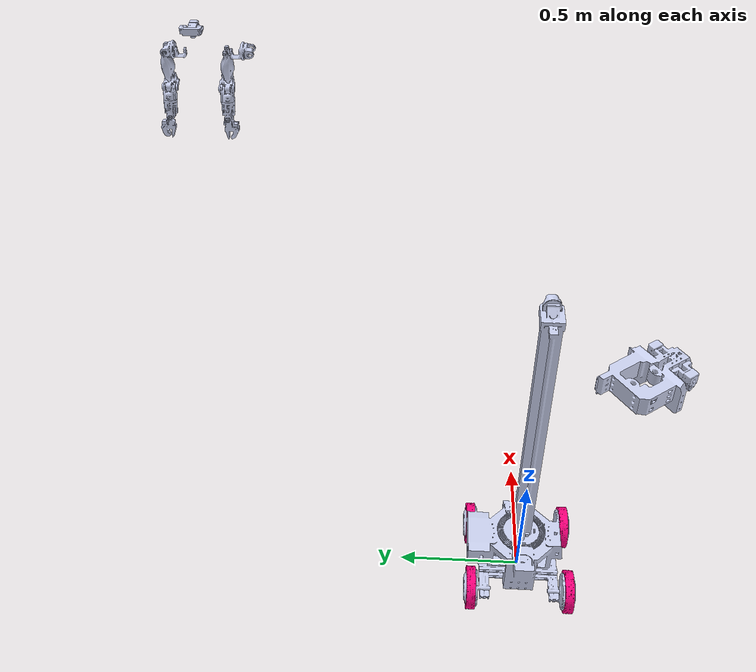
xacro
<?xml version="1.0"?>
<robot xmlns:xacro="http://www.ros.org/wiki/xacro" name="aizee_model">
    <xacro:arg name="ros2_control_hardware_type" default="feetech"/>
    <xacro:arg name="initial_positions_file" default="initial_positions.yaml" />

    <!-- Import aizee_model urdf file -->
    <xacro:include filename="$(find aizee_model)/urdf/aizee_model.urdf" />

    <!-- Import control_xacro -->
    <xacro:include filename="aizee_model.ros2_control.xacro" />

    <xacro:aizee_model_ros2_control
          name="aizee_hw"
          hardware_type="$(arg ros2_control_hardware_type)"
          initial_positions_file="$(arg initial_positions_file)"/>

</robot>

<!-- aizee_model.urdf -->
<robot
  name="aizee_model">
  <link
    name="base_link">
    <visual>
      <origin
        xyz="0 0 0"
        rpy="0 0 0" />
      <geometry>
        <mesh
          filename="package://aizee_model/meshes/base_link.STL" />
      </geometry>
      <material
        name="">
        <color
          rgba="0.792156862745098 0.819607843137255 0.933333333333333 1" />
      </material>
    </visual>
    <collision>
      <origin
        xyz="0 0 0"
        rpy="0 0 0" />
      <geometry>
        <mesh
          filename="package://aizee_model/meshes/base_link.STL" />
      </geometry>
    </collision>
  </link>
  <link
    name="fr_wheel_link">
    <inertial>
      <origin
        xyz="-5.46627908770692E-08 -0.0186624897526543 -3.37595906785282E-09"
        rpy="0 0 0" />
      <mass
        value="0.426146379184825" />
      <inertia
        ixx="0.00128519449195817"
        ixy="-1.71323451991008E-10"
        ixz="-2.79401242699905E-11"
        iyy="0.00247152544875011"
        iyz="-1.13833169168181E-10"
        izz="0.00128519581424847" />
    </inertial>
    <visual>
      <origin
        xyz="0 0 0"
        rpy="0 0 0" />
      <geometry>
        <mesh
          filename="package://aizee_model/meshes/fr_wheel_link.STL" />
      </geometry>
      <material
        name="">
        <color
          rgba="1 0 0.501960784313725 1" />
      </material>
    </visual>
    <collision>
      <origin
        xyz="0 0 0"
        rpy="0 0 0" />
      <geometry>
        <mesh
          filename="package://aizee_model/meshes/fr_wheel_link.STL" />
      </geometry>
    </collision>
  </link>
  <joint
    name="fr_wheel_joint"
    type="continuous">
    <origin
      xyz="-0.164400000012016 0.18552749994085 0.0449999999998704"
      rpy="3.14159265358979 0 0" />
    <parent
      link="base_link" />
    <child
      link="fr_wheel_link" />
    <axis
      xyz="0 1 0" />
  </joint>
  <link
    name="fl_wheel_link">
    <inertial>
      <origin
        xyz="-5.45316413275154E-08 -0.0186624897523085 -3.17734610844056E-09"
        rpy="0 0 0" />
      <mass
        value="0.426146379160631" />
      <inertia
        ixx="0.00128519449163043"
        ixy="-1.70595585741986E-10"
        ixz="-2.72508219332013E-11"
        iyy="0.00247152544860307"
        iyz="-1.13562728369243E-10"
        izz="0.00128519581445071" />
    </inertial>
    <visual>
      <origin
        xyz="0 0 0"
        rpy="0 0 0" />
      <geometry>
        <mesh
          filename="package://aizee_model/meshes/fl_wheel_link.STL" />
      </geometry>
      <material
        name="">
        <color
          rgba="1 0 0.501960784313725 1" />
      </material>
    </visual>
    <collision>
      <origin
        xyz="0 0 0"
        rpy="0 0 0" />
      <geometry>
        <mesh
          filename="package://aizee_model/meshes/fl_wheel_link.STL" />
      </geometry>
    </collision>
  </link>
  <joint
    name="fl_wheel_joint"
    type="continuous">
    <origin
      xyz="-0.164400000012017 -0.182527499940847 0.0449999999998682"
      rpy="-3.14159265358979 0.937838269683351 3.14159265358979" />
    <parent
      link="base_link" />
    <child
      link="fl_wheel_link" />
    <axis
      xyz="0 1 0" />
  </joint>
  <link
    name="br_wheel_link">
    <inertial>
      <origin
        xyz="-5.46627909048247E-08 0.0186625103656381 -3.37595910254729E-09"
        rpy="0 0 0" />
      <mass
        value="0.426146379184826" />
      <inertia
        ixx="0.00128519449195818"
        ixy="-1.71323451195235E-10"
        ixz="-2.79401242048679E-11"
        iyy="0.00247152544875012"
        iyz="-1.1383316939129E-10"
        izz="0.00128519581424847" />
    </inertial>
    <visual>
      <origin
        xyz="0 0 0"
        rpy="0 0 0" />
      <geometry>
        <mesh
          filename="package://aizee_model/meshes/br_wheel_link.STL" />
      </geometry>
      <material
        name="">
        <color
          rgba="1 0 0.501960784313725 1" />
      </material>
    </visual>
    <collision>
      <origin
        xyz="0 0 0"
        rpy="0 0 0" />
      <geometry>
        <mesh
          filename="package://aizee_model/meshes/br_wheel_link.STL" />
      </geometry>
    </collision>
  </link>
  <joint
    name="br_wheel_joint"
    type="continuous">
    <origin
      xyz="0.164799999987984 0.182527499940852 0.0449999999998817"
      rpy="0 0 0" />
    <parent
      link="base_link" />
    <child
      link="br_wheel_link" />
    <axis
      xyz="0 1 0" />
  </joint>
  <link
    name="bl_wheel_link">
    <inertial>
      <origin
        xyz="-5.46069843510022E-08 0.0186625103671857 -3.44144951772152E-09"
        rpy="0 0 0" />
      <mass
        value="0.426146379308016" />
      <inertia
        ixx="0.00128519449230551"
        ixy="-1.71311975107913E-10"
        ixz="-2.80043327394697E-11"
        iyy="0.00247152544942666"
        iyz="-1.14095859060689E-10"
        izz="0.00128519581458769" />
    </inertial>
    <visual>
      <origin
        xyz="0 0 0"
        rpy="0 0 0" />
      <geometry>
        <mesh
          filename="package://aizee_model/meshes/bl_wheel_link.STL" />
      </geometry>
      <material
        name="">
        <color
          rgba="1 0 0.501960784313725 1" />
      </material>
    </visual>
    <collision>
      <origin
        xyz="0 0 0"
        rpy="0 0 0" />
      <geometry>
        <mesh
          filename="package://aizee_model/meshes/bl_wheel_link.STL" />
      </geometry>
    </collision>
  </link>
  <joint
    name="bl_wheel_joint"
    type="continuous">
    <origin
      xyz="0.164799999987983 -0.182527499940849 0.044999999999874"
      rpy="3.14159265358979 -0.0959172982254348 0" />
    <parent
      link="base_link" />
    <child
      link="bl_wheel_link" />
    <axis
      xyz="0 1 0" />
  </joint>
  <link
    name="gantry_swivel_link">
    <inertial>
      <origin
        xyz="-0.00481906046255163 0.470872937031539 0.00667916409485437"
        rpy="0 0 0" />
      <mass
        value="4.14956251604638" />
      <inertia
        ixx="0.237751282453851"
        ixy="-2.59343031176992E-05"
        ixz="-0.000359708214556283"
        iyy="0.00704742891187417"
        iyz="1.65990947852233E-05"
        izz="0.237980503973506" />
    </inertial>
    <visual>
      <origin
        xyz="0 0 0"
        rpy="0 0 0" />
      <geometry>
        <mesh
          filename="package://aizee_model/meshes/gantry_swivel_link.STL" />
      </geometry>
      <material
        name="">
        <color
          rgba="0.792156862745098 0.819607843137255 0.933333333333333 1" />
      </material>
    </visual>
    <collision>
      <origin
        xyz="0 0 0"
        rpy="0 0 0" />
      <geometry>
        <mesh
          filename="package://aizee_model/meshes/gantry_swivel_link.STL" />
      </geometry>
    </collision>
  </link>
  <joint
    name="gantry_swivel_joint"
    type="continuous">
    <origin
      xyz="-0.00171500001182112 0 0.0449999999986612"
      rpy="1.57079632679467 0 2.20130112028515" />
    <parent
      link="base_link" />
    <child
      link="gantry_swivel_link" />
    <axis
      xyz="0 1 0" />
    <limit
      lower="-3.14"
      upper="3.14"
      effort="1"
      velocity="1" />
  </joint>
  <link
    name="gantry_base_link">
    <inertial>
      <origin
        xyz="0.178249085149494 0.0787174725280506 3.05936364203354"
        rpy="0 0 0" />
      <mass
        value="2.87751988356169" />
      <inertia
        ixx="0.00798246795154849"
        ixy="-0.00015054975035743"
        ixz="-0.0020821333849389"
        iyy="0.0132005727335871"
        iyz="0.000192549431774713"
        izz="0.00918534791001343" />
    </inertial>
    <visual>
      <origin
        xyz="0 0 0"
        rpy="0 0 0" />
      <geometry>
        <mesh
          filename="package://aizee_model/meshes/gantry_base_link.STL" />
      </geometry>
      <material
        name="">
        <color
          rgba="0.792156862745098 0.819607843137255 0.933333333333333 1" />
      </material>
    </visual>
    <collision>
      <origin
        xyz="0 0 0"
        rpy="0 0 0" />
      <geometry>
        <mesh
          filename="package://aizee_model/meshes/gantry_base_link.STL" />
      </geometry>
    </collision>
  </link>
  <joint
    name="gantry_base_joint"
    type="prismatic">
    <origin
      xyz="-0.157321468199926 1.17368391308377 -0.309533448479469"
      rpy="0 0 0" />
    <parent
      link="gantry_swivel_link" />
    <child
      link="gantry_base_link" />
    <axis
      xyz="0 1 0" />
    <limit
      lower="-3.14"
      upper="3.14"
      effort="0"
      velocity="0" />
  </joint>
  <link
    name="head_swivel_link">
    <inertial>
      <origin
        xyz="-0.0317534999757465 0.038995079148132 -0.000234878143316078"
        rpy="0 0 0" />
      <mass
        value="0.0645692908984825" />
      <inertia
        ixx="2.19143491108637E-05"
        ixy="8.59546728879504E-06"
        ixz="-5.17728743081215E-08"
        iyy="3.65035191291138E-05"
        iyz="7.4636395709133E-09"
        izz="3.77426072161144E-05" />
    </inertial>
    <visual>
      <origin
        xyz="0 0 0"
        rpy="0 0 0" />
      <geometry>
        <mesh
          filename="package://aizee_model/meshes/head_swivel_link.STL" />
      </geometry>
      <material
        name="">
        <color
          rgba="0.792156862745098 0.819607843137255 0.933333333333333 1" />
      </material>
    </visual>
    <collision>
      <origin
        xyz="0 0 0"
        rpy="0 0 0" />
      <geometry>
        <mesh
          filename="package://aizee_model/meshes/head_swivel_link.STL" />
      </geometry>
    </collision>
  </link>
  <joint
    name="head_swivel_joint"
    type="continuous">
    <origin
      xyz="0.242106081826129 0.135938295928873 2.97917338191868"
      rpy="2.20732432388274 0 -1.57079632679517" />
    <parent
      link="gantry_base_link" />
    <child
      link="head_swivel_link" />
    <axis
      xyz="1 0 0" />
    <limit
      lower="-3.14"
      upper="3.14"
      effort="1"
      velocity="1" />
  </joint>
  <link
    name="head_tilt_link">
    <inertial>
      <origin
        xyz="0.000344345851992722 0.00646158645454845 -2.06908995537824E-05"
        rpy="0 0 0" />
      <mass
        value="0.0805110064262411" />
      <inertia
        ixx="2.09512468906614E-05"
        ixy="-1.45810557369461E-08"
        ixz="-1.7016431511319E-07"
        iyy="1.65096605263484E-05"
        iyz="-5.87295435875052E-09"
        izz="1.36041934860479E-05" />
    </inertial>
    <visual>
      <origin
        xyz="0 0 0"
        rpy="0 0 0" />
      <geometry>
        <mesh
          filename="package://aizee_model/meshes/head_tilt_link.STL" />
      </geometry>
      <material
        name="">
        <color
          rgba="0.792156862745098 0.819607843137255 0.933333333333333 1" />
      </material>
    </visual>
    <collision>
      <origin
        xyz="0 0 0"
        rpy="0 0 0" />
      <geometry>
        <mesh
          filename="package://aizee_model/meshes/head_tilt_link.STL" />
      </geometry>
    </collision>
  </link>
  <joint
    name="head_tilt_joint"
    type="continuous">
    <origin
      xyz="-0.0428400156095763 0 0"
      rpy="0 -0.0307989676412341 0.000185569376448724" />
    <parent
      link="head_swivel_link" />
    <child
      link="head_tilt_link" />
    <axis
      xyz="0 0.999981860564052 -0.0060231671782995" />
    <limit
      lower="-3.14"
      upper="3.14"
      effort="1"
      velocity="1" />
  </joint>
  <link
    name="head_pitch_link">
    <inertial>
      <origin
        xyz="-0.0378363465971923 -0.0127393114972798 -0.0021680654295506"
        rpy="0 0 0" />
      <mass
        value="0.113884247586372" />
      <inertia
        ixx="0.00014255506647324"
        ixy="-7.88980334654689E-06"
        ixz="2.71224617501231E-06"
        iyy="0.000157515094336006"
        iyz="2.67584376992046E-06"
        izz="4.18778744392634E-05" />
    </inertial>
    <visual>
      <origin
        xyz="0 0 0"
        rpy="0 0 0" />
      <geometry>
        <mesh
          filename="package://aizee_model/meshes/head_pitch_link.STL" />
      </geometry>
      <material
        name="">
        <color
          rgba="0.792156862745098 0.819607843137255 0.933333333333333 1" />
      </material>
    </visual>
    <collision>
      <origin
        xyz="0 0 0"
        rpy="0 0 0" />
      <geometry>
        <mesh
          filename="package://aizee_model/meshes/head_pitch_link.STL" />
      </geometry>
    </collision>
  </link>
  <joint
    name="head_pitch_joint"
    type="continuous">
    <origin
      xyz="-0.00715658863949598 0 0.000220485265825118"
      rpy="0.0301375093124696 -0.0107085179536229 1.06890143125903" />
    <parent
      link="head_tilt_link" />
    <child
      link="head_pitch_link" />
    <axis
      xyz="0.0307946572743629 0.00602031058358343 0.999507601243648" />
    <limit
      lower="-3.14"
      upper="3.14"
      effort="1"
      velocity="1" />
  </joint>
  <link
    name="left_shoulder_pitch_link">
    <inertial>
      <origin
        xyz="-0.00366625450710356 -0.0540212847619638 0.000196348311228389"
        rpy="0 0 0" />
      <mass
        value="0.224603058456901" />
      <inertia
        ixx="0.000101500474148185"
        ixy="-6.82752515700463E-06"
        ixz="2.76992102239034E-08"
        iyy="8.33644473974677E-05"
        iyz="-2.54208961689891E-07"
        izz="0.000108145520013598" />
    </inertial>
    <visual>
      <origin
        xyz="0 0 0"
        rpy="0 0 0" />
      <geometry>
        <mesh
          filename="package://aizee_model/meshes/left_shoulder_pitch_link.STL" />
      </geometry>
      <material
        name="">
        <color
          rgba="0.792156862745098 0.819607843137255 0.933333333333333 1" />
      </material>
    </visual>
    <collision>
      <origin
        xyz="0 0 0"
        rpy="0 0 0" />
      <geometry>
        <mesh
          filename="package://aizee_model/meshes/left_shoulder_pitch_link.STL" />
      </geometry>
    </collision>
  </link>
  <joint
    name="left_shoulder_pitch_joint"
    type="continuous">
    <origin
      xyz="0.0935898391350412 0.0585381329786352 2.88512198886941"
      rpy="-0.631198918193714 -0.0435891683503071 1.60263708973709" />
    <parent
      link="gantry_base_link" />
    <child
      link="left_shoulder_pitch_link" />
    <axis
      xyz="0 -1 0" />
    <limit
      lower="-1.82"
      upper="1.57"
      effort="1"
      velocity="1" />
  </joint>
  <link
    name="left_upper_arm_link">
    <inertial>
      <origin
        xyz="-0.0766963883885792 0.0134039791436639 -0.000276321241977517"
        rpy="0 0 0" />
      <mass
        value="0.311240729701745" />
      <inertia
        ixx="0.000138972130143033"
        ixy="3.48829804832209E-05"
        ixz="-3.86345334167084E-05"
        iyy="0.000383697145756863"
        iyz="3.99865009194705E-06"
        izz="0.000295827819656438" />
    </inertial>
    <visual>
      <origin
        xyz="0 0 0"
        rpy="0 0 0" />
      <geometry>
        <mesh
          filename="package://aizee_model/meshes/left_upper_arm_link.STL" />
      </geometry>
      <material
        name="">
        <color
          rgba="0.792156862745098 0.819607843137255 0.933333333333333 1" />
      </material>
    </visual>
    <collision>
      <origin
        xyz="0 0 0"
        rpy="0 0 0" />
      <geometry>
        <mesh
          filename="package://aizee_model/meshes/left_upper_arm_link.STL" />
      </geometry>
    </collision>
  </link>
  <joint
    name="left_upper_arm_joint"
    type="continuous">
    <origin
      xyz="0 -0.0210000249999997 0"
      rpy="0.0081422452723712 -0.00061707146343348 0.151282779582159" />
    <parent
      link="left_shoulder_pitch_link" />
    <child
      link="left_upper_arm_link" />
    <axis
      xyz="-0.0539479353612052 0 -0.998543749802813" />
    <limit
      lower="-2.7"
      upper="0"
      effort="1"
      velocity="1" />
  </joint>
  <link
    name="left_upper_elbow_link">
    <inertial>
      <origin
        xyz="0.0063954208135982 0.0872573783897015 -0.0020686049027539"
        rpy="0 0 0" />
      <mass
        value="0.174638971892268" />
      <inertia
        ixx="0.000144828279858494"
        ixy="-4.96315045600044E-05"
        ixz="-1.00606786137541E-07"
        iyy="6.78224410184125E-05"
        iyz="8.60322842723968E-07"
        izz="0.000196951013052636" />
    </inertial>
    <visual>
      <origin
        xyz="0 0 0"
        rpy="0 0 0" />
      <geometry>
        <mesh
          filename="package://aizee_model/meshes/left_upper_elbow_link.STL" />
      </geometry>
      <material
        name="">
        <color
          rgba="0.792156862745098 0.819607843137255 0.933333333333333 1" />
      </material>
    </visual>
    <collision>
      <origin
        xyz="0 0 0"
        rpy="0 0 0" />
      <geometry>
        <mesh
          filename="package://aizee_model/meshes/left_upper_elbow_link.STL" />
      </geometry>
    </collision>
  </link>
  <joint
    name="left_upper_elbow_joint"
    type="continuous">
    <origin
      xyz="-0.0862752361730879 0.0131904590673325 0.00456101284018645"
      rpy="1.72230140662095 1.51682218893959 3.1415926535897" />
    <parent
      link="left_upper_arm_link" />
    <child
      link="left_upper_elbow_link" />
    <axis
      xyz="0 -1 0" />
    <limit
      lower="-0.815"
      upper="1.05"
      effort="1"
      velocity="1" />
  </joint>
  <link
    name="left_lower_elbow_link">
    <inertial>
      <origin
        xyz="-0.0384012806454137 -0.00785859011357548 -0.00587888140572798"
        rpy="0 0 0" />
      <mass
        value="0.151902535776002" />
      <inertia
        ixx="3.84862261433918E-05"
        ixy="1.17674167053213E-06"
        ixz="-6.18257925443844E-06"
        iyy="6.38341523436869E-05"
        iyz="-2.40061828920234E-06"
        izz="5.79461132567127E-05" />
    </inertial>
    <visual>
      <origin
        xyz="0 0 0"
        rpy="0 0 0" />
      <geometry>
        <mesh
          filename="package://aizee_model/meshes/left_lower_elbow_link.STL" />
      </geometry>
      <material
        name="">
        <color
          rgba="0.792156862745098 0.819607843137255 0.933333333333333 1" />
      </material>
    </visual>
    <collision>
      <origin
        xyz="0 0 0"
        rpy="0 0 0" />
      <geometry>
        <mesh
          filename="package://aizee_model/meshes/left_lower_elbow_link.STL" />
      </geometry>
    </collision>
  </link>
  <joint
    name="left_lower_elbow_joint"
    type="continuous">
    <origin
      xyz="0.0381999999999998 0.112403218450234 0"
      rpy="1.96400162440634 -0.0881271151701579 -1.59563952845257" />
    <parent
      link="left_upper_elbow_link" />
    <child
      link="left_lower_elbow_link" />
    <axis
      xyz="0.0880130878902615 0.920101163566549 -0.381664178517586" />
    <limit
      lower="-2.1"
      upper="0"
      effort="1"
      velocity="1" />
  </joint>
  <link
    name="left_forearm_link">
    <inertial>
      <origin
        xyz="-0.0881848451432138 0.00476209067713834 -0.0158110196363839"
        rpy="0 0 0" />
      <mass
        value="0.133070486659464" />
      <inertia
        ixx="3.84773302292164E-05"
        ixy="2.2054009195661E-06"
        ixz="-2.20235527414744E-06"
        iyy="7.37294784592023E-05"
        iyz="2.37824234256486E-06"
        izz="5.58551108822215E-05" />
    </inertial>
    <visual>
      <origin
        xyz="0 0 0"
        rpy="0 0 0" />
      <geometry>
        <mesh
          filename="package://aizee_model/meshes/left_forearm_link.STL" />
      </geometry>
      <material
        name="">
        <color
          rgba="0.792156862745098 0.819607843137255 0.933333333333333 1" />
      </material>
    </visual>
    <collision>
      <origin
        xyz="0 0 0"
        rpy="0 0 0" />
      <geometry>
        <mesh
          filename="package://aizee_model/meshes/left_forearm_link.STL" />
      </geometry>
    </collision>
  </link>
  <joint
    name="left_forearm_joint"
    type="continuous">
    <origin
      xyz="-0.0269534702231413 -0.00214213478108545 -0.00613953045680382"
      rpy="-2.03700008275405 -0.274733744913231 -0.191545917444499" />
    <parent
      link="left_lower_elbow_link" />
    <child
      link="left_forearm_link" />
    <axis
      xyz="0.980643317783864 -0.0724305556359989 0.181913435172108" />
    <limit
      lower="-2.0"
      upper="2.5"
      effort="1"
      velocity="1" />
  </joint>
  <link
    name="left_wrist_pitch_link">
    <inertial>
      <origin
        xyz="-0.000976200915286662 0.00387708787434096 0.00871504590679717"
        rpy="0 0 0" />
      <mass
        value="0.0263062577407527" />
      <inertia
        ixx="1.20787443936794E-05"
        ixy="2.58815784477123E-07"
        ixz="4.48417991497033E-07"
        iyy="1.211052369407E-05"
        iyz="1.59016912824003E-06"
        izz="1.39466338599312E-05" />
    </inertial>
    <visual>
      <origin
        xyz="0 0 0"
        rpy="0 0 0" />
      <geometry>
        <mesh
          filename="package://aizee_model/meshes/left_wrist_pitch_link.STL" />
      </geometry>
      <material
        name="">
        <color
          rgba="0.792156862745098 0.819607843137255 0.933333333333333 1" />
      </material>
    </visual>
    <collision>
      <origin
        xyz="0 0 0"
        rpy="0 0 0" />
      <geometry>
        <mesh
          filename="package://aizee_model/meshes/left_wrist_pitch_link.STL" />
      </geometry>
    </collision>
  </link>
  <joint
    name="left_wrist_pitch_joint"
    type="continuous">
    <origin
      xyz="-0.124566694244266 0.00920052654643683 -0.0231076425516821"
      rpy="3.08769993659024 -1.35192984023634 -2.62673064646431" />
    <parent
      link="left_forearm_link" />
    <child
      link="left_wrist_pitch_link" />
    <axis
      xyz="0 -0.866025403784494 0.499999999999905" />
    <limit
      lower="-0.22"
      upper="0.22"
      effort="1"
      velocity="1" />
  </joint>
  <link
    name="left_wrist_tool_link">
    <inertial>
      <origin
        xyz="0.0150606893814914 -0.0335618936293743 0.00141729578731209"
        rpy="0 0 0" />
      <mass
        value="0.109165570786613" />
      <inertia
        ixx="4.79249279687809E-05"
        ixy="-9.8924293981908E-06"
        ixz="8.73271494265089E-08"
        iyy="3.46888786448698E-05"
        iyz="3.2045983483394E-08"
        izz="4.89192830147545E-05" />
    </inertial>
    <visual>
      <origin
        xyz="0 0 0"
        rpy="0 0 0" />
      <geometry>
        <mesh
          filename="package://aizee_model/meshes/left_wrist_tool_link.STL" />
      </geometry>
      <material
        name="">
        <color
          rgba="0.792156862745098 0.819607843137255 0.933333333333333 1" />
      </material>
    </visual>
    <collision>
      <origin
        xyz="0 0 0"
        rpy="0 0 0" />
      <geometry>
        <mesh
          filename="package://aizee_model/meshes/left_wrist_tool_link.STL" />
      </geometry>
    </collision>
  </link>
  <joint
    name="left_wrist_tool_joint"
    type="continuous">
    <origin
      xyz="0 0.0141339745962043 0.0264807621135394"
      rpy="-2.07922112326353 -0.0741625565420776 0.0531350305034689" />
    <parent
      link="left_wrist_pitch_link" />
    <child
      link="left_wrist_tool_link" />
    <axis
      xyz="0.995843763645561 0.0904852634575847 -0.0103737893393016" />
    <limit
      lower="-1.5"
      upper="1.5"
      effort="1"
      velocity="1" />
  </joint>
  <link
    name="right_shoulder_pitch_link">
    <inertial>
      <origin
        xyz="-0.00366633033287944 0.0730787263256541 -0.000196472994200836"
        rpy="0 0 0" />
      <mass
        value="0.2246031087904" />
      <inertia
        ixx="0.000101500499717251"
        ixy="-6.82749765297035E-06"
        ixz="-2.78086224265211E-08"
        iyy="8.33644138092405E-05"
        iyz="2.54262064555648E-07"
        izz="0.000108145604298187" />
    </inertial>
    <visual>
      <origin
        xyz="0 0 0"
        rpy="0 0 0" />
      <geometry>
        <mesh
          filename="package://aizee_model/meshes/right_shoulder_pitch_link.STL" />
      </geometry>
      <material
        name="">
        <color
          rgba="0.792156862745098 0.819607843137255 0.933333333333333 1" />
      </material>
    </visual>
    <collision>
      <origin
        xyz="0 0 0"
        rpy="0 0 0" />
      <geometry>
        <mesh
          filename="package://aizee_model/meshes/right_shoulder_pitch_link.STL" />
      </geometry>
    </collision>
  </link>
  <joint
    name="right_shoulder_pitch_joint"
    type="continuous">
    <origin
      xyz="0.274293991616603 0.058538132978631 3.01701581020399"
      rpy="2.51039373539614 -0.0435891683503091 1.60263708973709" />
    <parent
      link="gantry_base_link" />
    <child
      link="right_shoulder_pitch_link" />
    <axis
      xyz="0 -1 0" />
    <limit
      lower="1.57"
      upper="1.82"
      effort="1"
      velocity="1" />
  </joint>
  <link
    name="right_upper_arm_link">
    <inertial>
      <origin
        xyz="-0.0766992752777904 0.0134044031968606 0.000326639066075107"
        rpy="0 0 0" />
      <mass
        value="0.311238424356508" />
      <inertia
        ixx="0.000138970080817813"
        ixy="3.48842370504994E-05"
        ixz="3.86355387599525E-05"
        iyy="0.000383694197642075"
        iyz="-3.99816792458079E-06"
        izz="0.000295826555291494" />
    </inertial>
    <visual>
      <origin
        xyz="0 0 0"
        rpy="0 0 0" />
      <geometry>
        <mesh
          filename="package://aizee_model/meshes/right_upper_arm_link.STL" />
      </geometry>
      <material
        name="">
        <color
          rgba="0.792156862745098 0.819607843137255 0.933333333333333 1" />
      </material>
    </visual>
    <collision>
      <origin
        xyz="0 0 0"
        rpy="0 0 0" />
      <geometry>
        <mesh
          filename="package://aizee_model/meshes/right_upper_arm_link.STL" />
      </geometry>
    </collision>
  </link>
  <joint
    name="right_upper_arm_joint"
    type="continuous">
    <origin
      xyz="0 0.106100000000005 0"
      rpy="-0.00814224527238941 0.000617071463436487 0.151282779581843" />
    <parent
      link="right_shoulder_pitch_link" />
    <child
      link="right_upper_arm_link" />
    <axis
      xyz="-0.0539479353612056 0 0.998543749802813" />
    <limit
      lower="0"
      upper="2.7"
      effort="1"
      velocity="1" />
  </joint>
  <link
    name="right_upper_elbow_link">
    <inertial>
      <origin
        xyz="0.00639564820870245 0.0872557861739049 0.00207119890793367"
        rpy="0 0 0" />
      <mass
        value="0.17462194414463" />
      <inertia
        ixx="0.000144829041391368"
        ixy="-4.96321681987224E-05"
        ixz="1.01056671133304E-07"
        iyy="6.78203460269219E-05"
        iyz="-8.60250194213348E-07"
        izz="0.000196949982801383" />
    </inertial>
    <visual>
      <origin
        xyz="0 0 0"
        rpy="0 0 0" />
      <geometry>
        <mesh
          filename="package://aizee_model/meshes/right_upper_elbow_link.STL" />
      </geometry>
      <material
        name="">
        <color
          rgba="0.792156862745098 0.819607843137255 0.933333333333333 1" />
      </material>
    </visual>
    <collision>
      <origin
        xyz="0 0 0"
        rpy="0 0 0" />
      <geometry>
        <mesh
          filename="package://aizee_model/meshes/right_upper_elbow_link.STL" />
      </geometry>
    </collision>
  </link>
  <joint
    name="right_upper_elbow_joint"
    type="continuous">
    <origin
      xyz="-0.0837801498896911 0.0128131437121982 -0.00493341280181048"
      rpy="-1.7223014066196 -1.5168221889396 3.14159265358868" />
    <parent
      link="right_upper_arm_link" />
    <child
      link="right_upper_elbow_link" />
    <axis
      xyz="0 -1 0" />
    <limit
      lower="-1.05"
      upper="0.815"
      effort="1"
      velocity="1" />
  </joint>
  <link
    name="right_lower_elbow_link">
    <inertial>
      <origin
        xyz="-0.0384012442069588 -0.007858511251331 0.00587906711354463"
        rpy="0 0 0" />
      <mass
        value="0.151904197101514" />
      <inertia
        ixx="3.84864381691025E-05"
        ixy="1.17654297661311E-06"
        ixz="6.18266537995094E-06"
        iyy="6.38351264784855E-05"
        iyz="2.40045758350241E-06"
        izz="5.79465269689684E-05" />
    </inertial>
    <visual>
      <origin
        xyz="0 0 0"
        rpy="0 0 0" />
      <geometry>
        <mesh
          filename="package://aizee_model/meshes/right_lower_elbow_link.STL" />
      </geometry>
      <material
        name="">
        <color
          rgba="0.792156862745098 0.819607843137255 0.933333333333333 1" />
      </material>
    </visual>
    <collision>
      <origin
        xyz="0 0 0"
        rpy="0 0 0" />
      <geometry>
        <mesh
          filename="package://aizee_model/meshes/right_lower_elbow_link.STL" />
      </geometry>
    </collision>
  </link>
  <joint
    name="right_lower_elbow_joint"
    type="continuous">
    <origin
      xyz="0.0381999999999999 0.112403218450209 0"
      rpy="-1.96400162440628 0.0881271151698512 -1.59563952845255" />
    <parent
      link="right_upper_elbow_link" />
    <child
      link="right_lower_elbow_link" />
    <axis
      xyz="0.0880130878899545 0.920101163566575 0.381664178517595" />
    <limit
      lower="0"
      upper="2.1"
      effort="1"
      velocity="1" />
  </joint>
  <link
    name="right_forearm_link">
    <inertial>
      <origin
        xyz="-0.0881846753190366 0.00476205122885504 0.015811180069621"
        rpy="0 0 0" />
      <mass
        value="0.133069921434071" />
      <inertia
        ixx="3.84772142880184E-05"
        ixy="2.20525594230588E-06"
        ixz="2.20249074106523E-06"
        iyy="7.37301581090305E-05"
        iyz="-2.37824939444123E-06"
        izz="5.58558204840689E-05" />
    </inertial>
    <visual>
      <origin
        xyz="0 0 0"
        rpy="0 0 0" />
      <geometry>
        <mesh
          filename="package://aizee_model/meshes/right_forearm_link.STL" />
      </geometry>
      <material
        name="">
        <color
          rgba="0.792156862745098 0.819607843137255 0.933333333333333 1" />
      </material>
    </visual>
    <collision>
      <origin
        xyz="0 0 0"
        rpy="0 0 0" />
      <geometry>
        <mesh
          filename="package://aizee_model/meshes/right_forearm_link.STL" />
      </geometry>
    </collision>
  </link>
  <joint
    name="right_forearm_joint"
    type="continuous">
    <origin
      xyz="-0.0269534702231529 -0.00214213478108295 0.00613953045680563"
      rpy="2.03700008275405 0.274733744913234 -0.1915459174445" />
    <parent
      link="right_lower_elbow_link" />
    <child
      link="right_forearm_link" />
    <axis
      xyz="0.980643317783807 -0.0724305556360285 -0.181913435172403" />
    <limit
      lower="-2.5"
      upper="2.0"
      effort="1"
      velocity="1" />
  </joint>
  <link
    name="right_wrist_pitch_link">
    <inertial>
      <origin
        xyz="-0.000976345353643465 0.000999476310045377 -0.00948535498337566"
        rpy="0 0 0" />
      <mass
        value="0.0263065978280762" />
      <inertia
        ixx="1.2080454337315E-05"
        ixy="4.86335004953772E-10"
        ixz="-5.17724240006248E-07"
        iyy="1.11915249319666E-05"
        iyz="1.15840250685374E-10"
        izz="1.48646778943291E-05" />
    </inertial>
    <visual>
      <origin
        xyz="0 0 0"
        rpy="0 0 0" />
      <geometry>
        <mesh
          filename="package://aizee_model/meshes/right_wrist_pitch_link.STL" />
      </geometry>
      <material
        name="">
        <color
          rgba="0.792156862745098 0.819607843137255 0.933333333333333 1" />
      </material>
    </visual>
    <collision>
      <origin
        xyz="0 0 0"
        rpy="0 0 0" />
      <geometry>
        <mesh
          filename="package://aizee_model/meshes/right_wrist_pitch_link.STL" />
      </geometry>
    </collision>
  </link>
  <joint
    name="right_wrist_pitch_joint"
    type="continuous">
    <origin
      xyz="-0.124566694244255 0.00920052654643555 0.0231076425516814"
      rpy="2.56409921497058 -1.35192985229203 0.514862043305627" />
    <parent
      link="right_forearm_link" />
    <child
      link="right_wrist_pitch_link" />
    <axis
      xyz="0 -0.999999999998175 0" />
    <limit
      lower="-0.22"
      upper="0.22"
      effort="1"
      velocity="1" />
  </joint>
  <link
    name="right_wrist_tool_link">
    <inertial>
      <origin
        xyz="0.0158573641025974 -0.0334895053506832 0.0014089968396247"
        rpy="0 0 0" />
      <mass
        value="0.109165571976926" />
      <inertia
        ixx="4.79249281327562E-05"
        ixy="-9.89242965029905E-06"
        ixz="8.7327288915467E-08"
        iyy="3.468887871489E-05"
        iyz="3.20459441768868E-08"
        izz="4.89192832751407E-05" />
    </inertial>
    <visual>
      <origin
        xyz="0 0 0"
        rpy="0 0 0" />
      <geometry>
        <mesh
          filename="package://aizee_model/meshes/right_wrist_tool_link.STL" />
      </geometry>
      <material
        name="">
        <color
          rgba="0.792156862745098 0.819607843137255 0.933333333333333 1" />
      </material>
    </visual>
    <collision>
      <origin
        xyz="0 0 0"
        rpy="0 0 0" />
      <geometry>
        <mesh
          filename="package://aizee_model/meshes/right_wrist_tool_link.STL" />
      </geometry>
    </collision>
  </link>
  <joint
    name="right_wrist_tool_joint"
    type="continuous">
    <origin
      xyz="0 0.00100005732113667 -0.0299999980892369"
      rpy="1.58753777306352 0.0907744300301574 3.13273498556734" />
    <parent
      link="right_wrist_pitch_link" />
    <child
      link="right_wrist_tool_link" />
    <axis
      xyz="-0.995843763645616 -0.09048526345698 0.0103737893393006" />
    <limit
      lower="-1.5"
      upper="1.5"
      effort="1"
      velocity="1" />
  </joint>
</robot>
